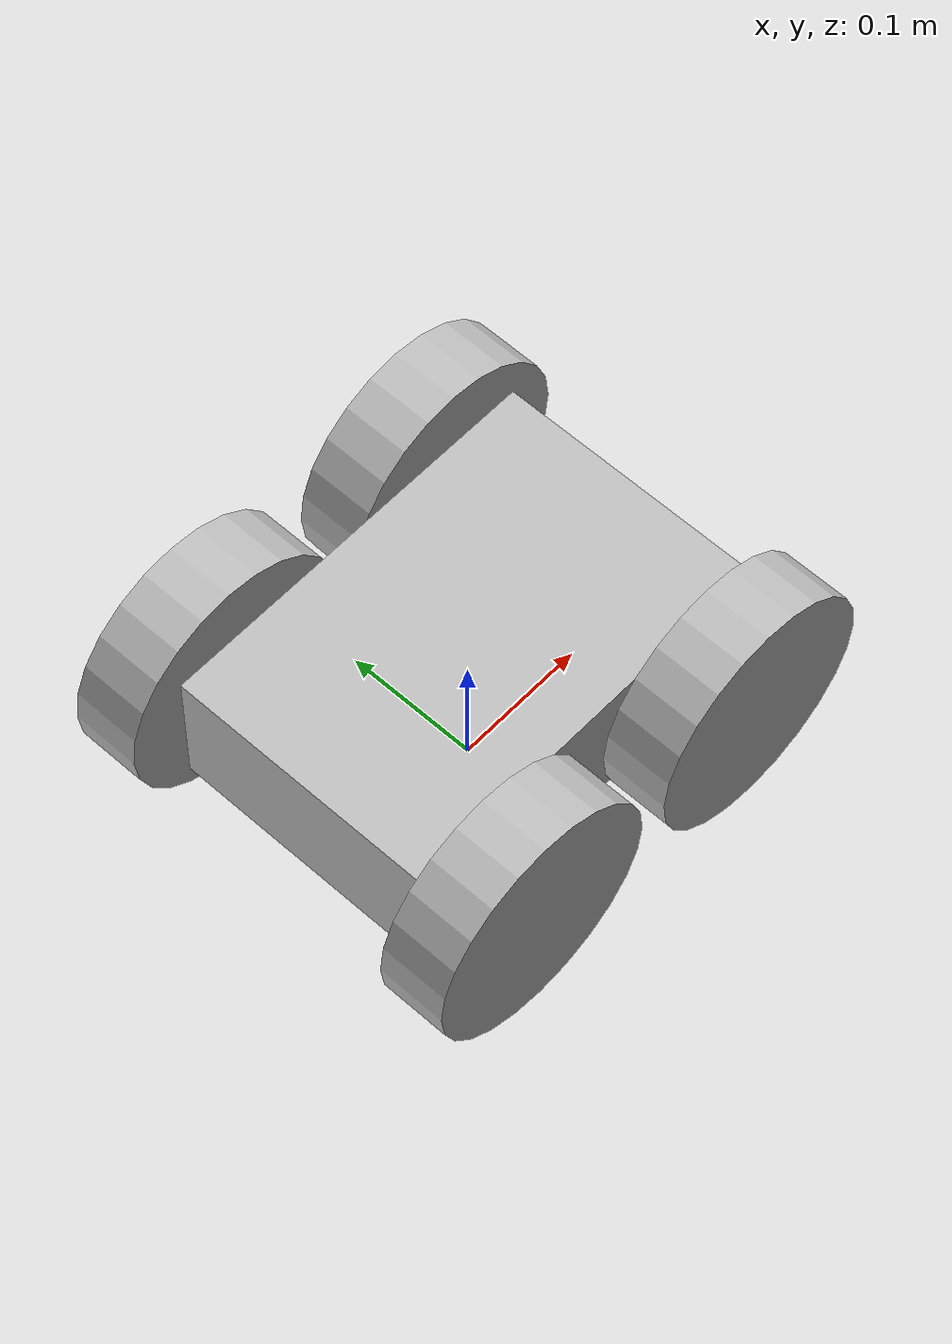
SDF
<?xml version='1.0'?>
<sdf version="1.7">
    <model name="4x4_robot">
        <link name='chassis'>
            <pose>0 0 0.1 0 0 0</pose>
            <static>true</static>
            <inertial>
                <mass>10</mass>
            </inertial>
            <collision name='chassis_collision'>
                <geometry>
                    <box>
                        <size>0.3 0.2 0.1</size>
                    </box>
                </geometry>
            </collision>
            <visual name='visual'>
                <geometry>
                    <box>
                        <size>0.3 0.2 0.1</size>
                    </box>
                </geometry>
            </visual>
        </link>

        <link name='left_front_wheel'>
            <pose>0.1 0.13 0.1 0 1.5707 1.5707</pose>
            <collision name='left_front_wheel_collision'>
                <geometry>
                    <cylinder>
                        <radius>0.09</radius>
                        <length>0.05</length>
                    </cylinder>
                </geometry>
                <surface>
                    <friction>
                        <ode>
                            <mu>1.0</mu>
                            <mu2>1.0</mu2>
                            <slip1>0.0</slip1>
                            <slip2>0.0</slip2>
                        </ode>
                    </friction>
                </surface>
            </collision>
            <visual name='left_front_wheel_visual'>
                <geometry>
                    <cylinder>
                        <radius>0.09</radius>
                        <length>0.05</length>
                    </cylinder>
                </geometry>
            </visual>
        </link>

        <link name='right_front_wheel'>
            <pose>0.1 -0.13 0.1 0 1.5707 1.5707</pose>
            <collision name='right_front_wheel_collision'>
                <geometry>
                    <cylinder>
                        <radius>.09</radius>
                        <length>.05</length>
                    </cylinder>
                </geometry>
                <surface>
                    <friction>
                        <ode>
                            <mu>1.0</mu>
                            <mu2>1.0</mu2>
                            <slip1>0.0</slip1>
                            <slip2>0.0</slip2>
                        </ode>
                    </friction>
                </surface>
            </collision>
            <visual name='right_front_wheel_visual'>
                <geometry>
                    <cylinder>
                        <radius>.09</radius>
                        <length>.05</length>
                    </cylinder>
                </geometry>
            </visual>
        </link>

        <link name='left_rear_wheel'>
            <pose>-0.1 0.13 0.1 0 1.5707 1.5707</pose>
            <collision name='left_rear_wheel_collision'>
                <geometry>
                    <cylinder>
                        <radius>0.09</radius>
                        <length>0.05</length>
                    </cylinder>
                </geometry>
                <surface>
                    <friction>
                        <ode>
                            <mu>1.0</mu>
                            <mu2>1.0</mu2>
                            <slip1>0.0</slip1>
                            <slip2>0.0</slip2>
                        </ode>
                    </friction>
                </surface>
            </collision>
            <visual name='left_rear_wheel_visual'>
                <geometry>
                    <cylinder>
                        <radius>0.09</radius>
                        <length>0.05</length>
                    </cylinder>
                </geometry>
            </visual>
        </link>

        <link name='right_rear_wheel'>
            <pose>-0.1 -0.13 0.1 0 1.5707 1.5707</pose>
            <collision name='right_rear_wheel_collision'>
                <geometry>
                    <cylinder>
                        <radius>.09</radius>
                        <length>.05</length>
                    </cylinder>
                </geometry>
                <surface>
                    <friction>
                        <ode>
                            <mu>1.0</mu>
                            <mu2>1.0</mu2>
                            <slip1>0.0</slip1>
                            <slip2>0.0</slip2>
                        </ode>
                    </friction>
                </surface>
            </collision>
            <visual name='right_rear_wheel_visual'>
                <geometry>
                    <cylinder>
                        <radius>.09</radius>
                        <length>.05</length>
                    </cylinder>
                </geometry>
            </visual>
        </link>

        <joint type='revolute' name='left_front_wheel_hinge'>
            <pose> 0 0 -0.03 0 0 0 </pose>
            <child>left_front_wheel</child>
            <parent>chassis</parent>
            <axis>
                <xyz>0 0 1</xyz>
            </axis>
            <dynamics>
                <friction>100.0</friction>
                <spring_stiffness>0.1</spring_stiffness>
            </dynamics>
            <limit>
                <effort>0.01</effort>
                <velocity>0.005</velocity>
            </limit>
        </joint>

        <joint type='revolute' name='left_rear_wheel_hinge'>
            <pose> 0 0 -0.03 0 0 0 </pose>
            <child>left_rear_wheel</child>
            <parent>chassis</parent>
            <axis>
                <xyz>0 0 1</xyz>
            </axis>
            <dynamics>
                <friction>100.0</friction>
                <spring_stiffness>0.1</spring_stiffness>
            </dynamics>
            <limit>
                <effort>0.01</effort>
                <velocity>0.005</velocity>
            </limit>
        </joint>

        <joint type='revolute' name='right_front_wheel_hinge'>
            <pose> 0 0 0.03 0 0 0 </pose>
            <child>right_front_wheel</child>
            <parent>chassis</parent>
            <axis>
                <xyz>0 0 1</xyz>
            </axis>
            <dynamics>
                <friction>100.0</friction>
                <spring_stiffness>0.1</spring_stiffness>
            </dynamics>
            <limit>
                <effort>0.01</effort>
                <velocity>0.005</velocity>
            </limit>
        </joint>

        <joint type='revolute' name='right_rear_wheel_hinge'>
            <pose> 0 0 0.03 0 0 0 </pose>
            <child>right_rear_wheel</child>
            <parent>chassis</parent>
            <axis>
                <xyz>0 0 1</xyz>
            </axis>
            <dynamics>
                <friction>100.0</friction>
                <spring_stiffness>0.1</spring_stiffness>
            </dynamics>
            <limit>
                <effort>0.01</effort>
                <velocity>0.005</velocity>
            </limit>
        </joint>

    </model>
</sdf>
